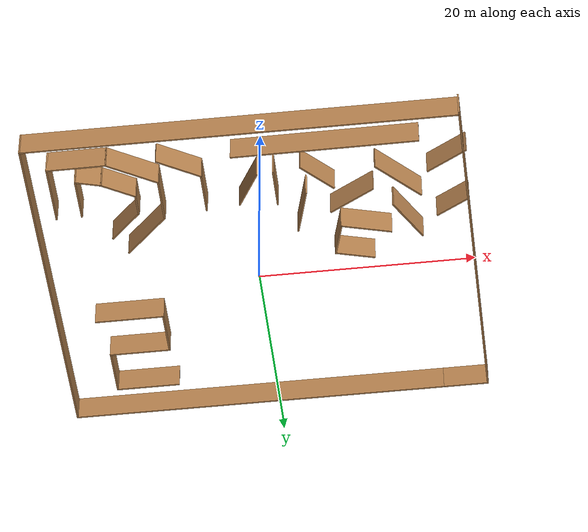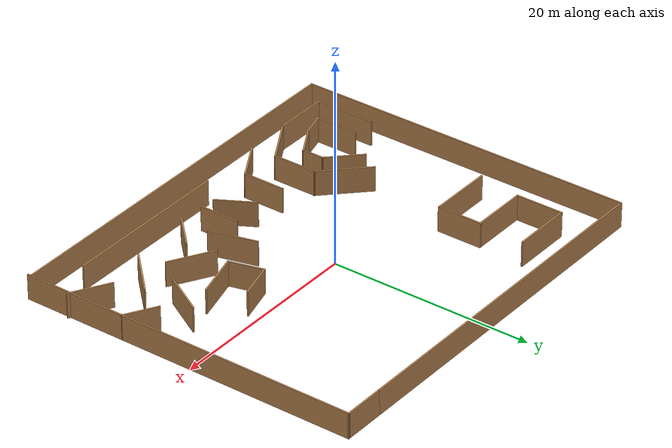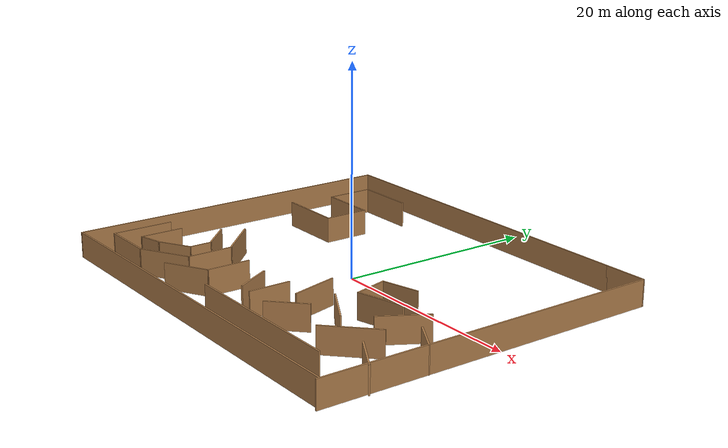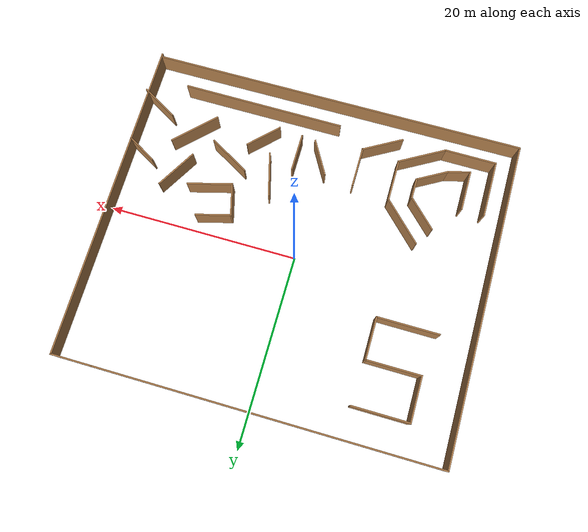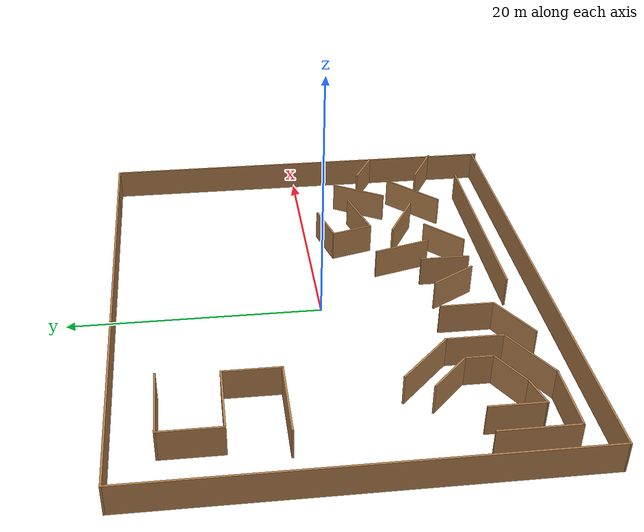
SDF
<?xml version='1.0'?>
<sdf version='1.7'>
  <model name='Building'>
    <pose>0.293684 -0.59256 0 0 -0 0</pose>
    <link name='Wall_0'>
      <collision name='Wall_0_Collision'>
        <geometry>
          <box>
            <size>33.75 0.15 2.5</size>
          </box>
        </geometry>
        <pose>0 0 1.25 0 -0 0</pose>
      </collision>
      <visual name='Wall_0_Visual'>
        <pose>0 0 1.25 0 -0 0</pose>
        <geometry>
          <box>
            <size>33.75 0.15 2.5</size>
          </box>
        </geometry>
        <material>
          <script>
            <uri>file://media/materials/scripts/gazebo.material</uri>
            <name>Gazebo/Wood</name>
          </script>
          <ambient>1 1 1 1</ambient>
        </material>
        <meta>
          <layer>0</layer>
        </meta>
      </visual>
      <pose>-19.8496 0.046789 0 0 -0 -1.5708</pose>
    </link>
    <link name='Wall_1'>
      <collision name='Wall_1_Collision'>
        <geometry>
          <box>
            <size>39.4949 0.15 2.5</size>
          </box>
        </geometry>
        <pose>0 0 1.25 0 -0 0</pose>
      </collision>
      <visual name='Wall_1_Visual'>
        <pose>0 0 1.25 0 -0 0</pose>
        <geometry>
          <box>
            <size>39.4949 0.15 2.5</size>
          </box>
        </geometry>
        <material>
          <script>
            <uri>file://media/materials/scripts/gazebo.material</uri>
            <name>Gazebo/Wood</name>
          </script>
          <ambient>1 1 1 1</ambient>
        </material>
        <meta>
          <layer>0</layer>
        </meta>
      </visual>
      <pose>-0.17734 -16.6596 0 0 -0 0.004757</pose>
    </link>
    <link name='Wall_10'>
      <collision name='Wall_10_Collision'>
        <geometry>
          <box>
            <size>5.25 0.15 2.5</size>
          </box>
        </geometry>
        <pose>0 0 1.25 0 -0 0</pose>
      </collision>
      <visual name='Wall_10_Visual'>
        <pose>0 0 1.25 0 -0 0</pose>
        <geometry>
          <box>
            <size>5.25 0.15 2.5</size>
          </box>
        </geometry>
        <material>
          <script>
            <uri>file://media/materials/scripts/gazebo.material</uri>
            <name>Gazebo/Wood</name>
          </script>
          <ambient>1 0.764706 0.305882 1</ambient>
        </material>
        <meta>
          <layer>0</layer>
        </meta>
      </visual>
      <pose>-10.2302 -13.1092 0 0 -0 0.523599</pose>
    </link>
    <link name='Wall_11'>
      <collision name='Wall_11_Collision'>
        <geometry>
          <box>
            <size>4.5 0.15 2.5</size>
          </box>
        </geometry>
        <pose>0 0 1.25 0 -0 0</pose>
      </collision>
      <visual name='Wall_11_Visual'>
        <pose>0 0 1.25 0 -0 0</pose>
        <geometry>
          <box>
            <size>4.5 0.15 2.5</size>
          </box>
        </geometry>
        <material>
          <script>
            <uri>file://media/materials/scripts/gazebo.material</uri>
            <name>Gazebo/Wood</name>
          </script>
          <ambient>1 0.764706 0.305882 1</ambient>
        </material>
        <meta>
          <layer>0</layer>
        </meta>
      </visual>
      <pose>-8.02188 -9.65922 0 0 -0 1.5708</pose>
    </link>
    <link name='Wall_12'>
      <collision name='Wall_12_Collision'>
        <geometry>
          <box>
            <size>5.5 0.15 2.5</size>
          </box>
        </geometry>
        <pose>0 0 1.25 0 -0 0</pose>
      </collision>
      <visual name='Wall_12_Visual'>
        <pose>0 0 1.25 0 -0 0</pose>
        <geometry>
          <box>
            <size>5.5 0.15 2.5</size>
          </box>
        </geometry>
        <material>
          <script>
            <uri>file://media/materials/scripts/gazebo.material</uri>
            <name>Gazebo/Wood</name>
          </script>
          <ambient>1 0.764706 0.305882 1</ambient>
        </material>
        <meta>
          <layer>0</layer>
        </meta>
      </visual>
      <pose>-9.91339 -5.59271 0 0 -0 2.35619</pose>
    </link>
    <link name='Wall_14'>
      <collision name='Wall_14_Collision'>
        <geometry>
          <box>
            <size>4.25 0.15 2.5</size>
          </box>
        </geometry>
        <pose>0 0 1.25 0 -0 0</pose>
      </collision>
      <visual name='Wall_14_Visual'>
        <pose>0 0 1.25 0 -0 0</pose>
        <geometry>
          <box>
            <size>4.25 0.15 2.5</size>
          </box>
        </geometry>
        <material>
          <script>
            <uri>file://media/materials/scripts/gazebo.material</uri>
            <name>Gazebo/Wood</name>
          </script>
          <ambient>1 0.764706 0.305882 1</ambient>
        </material>
        <meta>
          <layer>0</layer>
        </meta>
      </visual>
      <pose>-15.4536 -10.655 0 0 -0 -1.5708</pose>
    </link>
    <link name='Wall_15'>
      <collision name='Wall_15_Collision'>
        <geometry>
          <box>
            <size>2.5 0.15 2.5</size>
          </box>
        </geometry>
        <pose>0 0 1.25 0 -0 0</pose>
      </collision>
      <visual name='Wall_15_Visual'>
        <pose>0 0 1.25 0 -0 0</pose>
        <geometry>
          <box>
            <size>2.5 0.15 2.5</size>
          </box>
        </geometry>
        <material>
          <script>
            <uri>file://media/materials/scripts/gazebo.material</uri>
            <name>Gazebo/Wood</name>
          </script>
          <ambient>1 0.764706 0.305882 1</ambient>
        </material>
        <meta>
          <layer>0</layer>
        </meta>
      </visual>
      <pose>-14.3187 -12.4009 0 0 -0 0.261799</pose>
    </link>
    <link name='Wall_16'>
      <collision name='Wall_16_Collision'>
        <geometry>
          <box>
            <size>3.5 0.15 2.5</size>
          </box>
        </geometry>
        <pose>0 0 1.25 0 -0 0</pose>
      </collision>
      <visual name='Wall_16_Visual'>
        <pose>0 0 1.25 0 -0 0</pose>
        <geometry>
          <box>
            <size>3.5 0.15 2.5</size>
          </box>
        </geometry>
        <material>
          <script>
            <uri>file://media/materials/scripts/gazebo.material</uri>
            <name>Gazebo/Wood</name>
          </script>
          <ambient>1 0.764706 0.305882 1</ambient>
        </material>
        <meta>
          <layer>0</layer>
        </meta>
      </visual>
      <pose>-11.7331 -11.2593 0 0 -0 0.523599</pose>
    </link>
    <link name='Wall_17'>
      <collision name='Wall_17_Collision'>
        <geometry>
          <box>
            <size>2.25 0.15 2.5</size>
          </box>
        </geometry>
        <pose>0 0 1.25 0 -0 0</pose>
      </collision>
      <visual name='Wall_17_Visual'>
        <pose>0 0 1.25 0 -0 0</pose>
        <geometry>
          <box>
            <size>2.25 0.15 2.5</size>
          </box>
        </geometry>
        <material>
          <script>
            <uri>file://media/materials/scripts/gazebo.material</uri>
            <name>Gazebo/Wood</name>
          </script>
          <ambient>1 0.764706 0.305882 1</ambient>
        </material>
        <meta>
          <layer>0</layer>
        </meta>
      </visual>
      <pose>-10.2825 -9.37175 0 0 -0 1.5708</pose>
    </link>
    <link name='Wall_19'>
      <collision name='Wall_19_Collision'>
        <geometry>
          <box>
            <size>4 0.15 2.5</size>
          </box>
        </geometry>
        <pose>0 0 1.25 0 -0 0</pose>
      </collision>
      <visual name='Wall_19_Visual'>
        <pose>0 0 1.25 0 -0 0</pose>
        <geometry>
          <box>
            <size>4 0.15 2.5</size>
          </box>
        </geometry>
        <material>
          <script>
            <uri>file://media/materials/scripts/gazebo.material</uri>
            <name>Gazebo/Wood</name>
          </script>
          <ambient>1 0.764706 0.305882 1</ambient>
        </material>
        <meta>
          <layer>0</layer>
        </meta>
      </visual>
      <pose>-11.6437 -6.96057 0 0 -0 2.35619</pose>
    </link>
    <link name='Wall_2'>
      <collision name='Wall_2_Collision'>
        <geometry>
          <box>
            <size>33.8436 0.15 2.5</size>
          </box>
        </geometry>
        <pose>0 0 1.25 0 -0 0</pose>
      </collision>
      <visual name='Wall_2_Visual'>
        <pose>0 0 1.25 0 -0 0</pose>
        <geometry>
          <box>
            <size>33.8436 0.15 2.5</size>
          </box>
        </geometry>
        <material>
          <script>
            <uri>file://media/materials/scripts/gazebo.material</uri>
            <name>Gazebo/Wood</name>
          </script>
          <ambient>1 1 1 1</ambient>
        </material>
        <meta>
          <layer>0</layer>
        </meta>
      </visual>
      <pose>19.5944 1e-06 0 0 -0 1.57044</pose>
    </link>
    <link name='Wall_21'>
      <collision name='Wall_21_Collision'>
        <geometry>
          <box>
            <size>4.5 0.15 2.5</size>
          </box>
        </geometry>
        <pose>0 0 1.25 0 -0 0</pose>
      </collision>
      <visual name='Wall_21_Visual'>
        <pose>0 0 1.25 0 -0 0</pose>
        <geometry>
          <box>
            <size>4.5 0.15 2.5</size>
          </box>
        </geometry>
        <material>
          <script>
            <uri>file://media/materials/scripts/gazebo.material</uri>
            <name>Gazebo/Wood</name>
          </script>
          <ambient>1 0.764706 0.305882 1</ambient>
        </material>
        <meta>
          <layer>0</layer>
        </meta>
      </visual>
      <pose>-5.95994 -13.2061 0 0 -0 0.523599</pose>
    </link>
    <link name='Wall_22'>
      <collision name='Wall_22_Collision'>
        <geometry>
          <box>
            <size>4.25 0.15 2.5</size>
          </box>
        </geometry>
        <pose>0 0 1.25 0 -0 0</pose>
      </collision>
      <visual name='Wall_22_Visual'>
        <pose>0 0 1.25 0 -0 0</pose>
        <geometry>
          <box>
            <size>4.25 0.15 2.5</size>
          </box>
        </geometry>
        <material>
          <script>
            <uri>file://media/materials/scripts/gazebo.material</uri>
            <name>Gazebo/Wood</name>
          </script>
          <ambient>1 0.764706 0.305882 1</ambient>
        </material>
        <meta>
          <layer>0</layer>
        </meta>
      </visual>
      <pose>-4.07634 -10.0686 0 0 -0 1.5708</pose>
    </link>
    <link name='Wall_24'>
      <collision name='Wall_24_Collision'>
        <geometry>
          <box>
            <size>6 0.15 2.5</size>
          </box>
        </geometry>
        <pose>0 0 1.25 0 -0 0</pose>
      </collision>
      <visual name='Wall_24_Visual'>
        <pose>0 0 1.25 0 -0 0</pose>
        <geometry>
          <box>
            <size>6 0.15 2.5</size>
          </box>
        </geometry>
        <material>
          <script>
            <uri>file://media/materials/scripts/gazebo.material</uri>
            <name>Gazebo/Wood</name>
          </script>
          <ambient>0.996078 0.47451 0.0196078 1</ambient>
        </material>
        <meta>
          <layer>0</layer>
        </meta>
      </visual>
      <pose>-12.5375 13.5847 0 0 -0 3.14159</pose>
    </link>
    <link name='Wall_25'>
      <collision name='Wall_25_Collision'>
        <geometry>
          <box>
            <size>4.75 0.15 2.5</size>
          </box>
        </geometry>
        <pose>0 0 1.25 0 -0 0</pose>
      </collision>
      <visual name='Wall_25_Visual'>
        <pose>0 0 1.25 0 -0 0</pose>
        <geometry>
          <box>
            <size>4.75 0.15 2.5</size>
          </box>
        </geometry>
        <material>
          <script>
            <uri>file://media/materials/scripts/gazebo.material</uri>
            <name>Gazebo/Wood</name>
          </script>
          <ambient>0.996078 0.47451 0.0196078 1</ambient>
        </material>
        <meta>
          <layer>0</layer>
        </meta>
      </visual>
      <pose>-15.4625 11.2847 0 0 -0 -1.5708</pose>
    </link>
    <link name='Wall_26'>
      <collision name='Wall_26_Collision'>
        <geometry>
          <box>
            <size>5.75 0.15 2.5</size>
          </box>
        </geometry>
        <pose>0 0 1.25 0 -0 0</pose>
      </collision>
      <visual name='Wall_26_Visual'>
        <pose>0 0 1.25 0 -0 0</pose>
        <geometry>
          <box>
            <size>5.75 0.15 2.5</size>
          </box>
        </geometry>
        <material>
          <script>
            <uri>file://media/materials/scripts/gazebo.material</uri>
            <name>Gazebo/Wood</name>
          </script>
          <ambient>0.996078 0.47451 0.0196078 1</ambient>
        </material>
        <meta>
          <layer>0</layer>
        </meta>
      </visual>
      <pose>-12.6625 8.98469 0 0 -0 0</pose>
    </link>
    <link name='Wall_27'>
      <collision name='Wall_27_Collision'>
        <geometry>
          <box>
            <size>4.5 0.15 2.5</size>
          </box>
        </geometry>
        <pose>0 0 1.25 0 -0 0</pose>
      </collision>
      <visual name='Wall_27_Visual'>
        <pose>0 0 1.25 0 -0 0</pose>
        <geometry>
          <box>
            <size>4.5 0.15 2.5</size>
          </box>
        </geometry>
        <material>
          <script>
            <uri>file://media/materials/scripts/gazebo.material</uri>
            <name>Gazebo/Wood</name>
          </script>
          <ambient>0.996078 0.47451 0.0196078 1</ambient>
        </material>
        <meta>
          <layer>0</layer>
        </meta>
      </visual>
      <pose>-9.86247 6.80969 0 0 -0 -1.5708</pose>
    </link>
    <link name='Wall_28'>
      <collision name='Wall_28_Collision'>
        <geometry>
          <box>
            <size>6.5 0.15 2.5</size>
          </box>
        </geometry>
        <pose>0 0 1.25 0 -0 0</pose>
      </collision>
      <visual name='Wall_28_Visual'>
        <pose>0 0 1.25 0 -0 0</pose>
        <geometry>
          <box>
            <size>6.5 0.15 2.5</size>
          </box>
        </geometry>
        <material>
          <script>
            <uri>file://media/materials/scripts/gazebo.material</uri>
            <name>Gazebo/Wood</name>
          </script>
          <ambient>0.996078 0.47451 0.0196078 1</ambient>
        </material>
        <meta>
          <layer>0</layer>
        </meta>
      </visual>
      <pose>-13.0375 4.63469 0 0 -0 3.14159</pose>
    </link>
    <link name='Wall_31'>
      <collision name='Wall_31_Collision'>
        <geometry>
          <box>
            <size>17 0.15 2.5</size>
          </box>
        </geometry>
        <pose>0 0 1.25 0 -0 0</pose>
      </collision>
      <visual name='Wall_31_Visual'>
        <pose>0 0 1.25 0 -0 0</pose>
        <geometry>
          <box>
            <size>17 0.15 2.5</size>
          </box>
        </geometry>
        <material>
          <script>
            <uri>file://media/materials/scripts/gazebo.material</uri>
            <name>Gazebo/Wood</name>
          </script>
          <ambient>0.435294 0.796078 0.67451 1</ambient>
        </material>
        <meta>
          <layer>0</layer>
        </meta>
      </visual>
      <pose>7.30337 -14.0106 0 0 -0 0</pose>
    </link>
    <link name='Wall_33'>
      <collision name='Wall_33_Collision'>
        <geometry>
          <box>
            <size>5.5 0.15 2.5</size>
          </box>
        </geometry>
        <pose>0 0 1.25 0 -0 0</pose>
      </collision>
      <visual name='Wall_33_Visual'>
        <pose>0 0 1.25 0 -0 0</pose>
        <geometry>
          <box>
            <size>5.5 0.15 2.5</size>
          </box>
        </geometry>
        <material>
          <script>
            <uri>file://media/materials/scripts/gazebo.material</uri>
            <name>Gazebo/Wood</name>
          </script>
          <ambient>0.435294 0.796078 0.67451 1</ambient>
        </material>
        <meta>
          <layer>0</layer>
        </meta>
      </visual>
      <pose>13.5062 -9.50104 0 0 -0 0.785398</pose>
    </link>
    <link name='Wall_35'>
      <collision name='Wall_35_Collision'>
        <geometry>
          <box>
            <size>4.75 0.15 2.5</size>
          </box>
        </geometry>
        <pose>0 0 1.25 0 -0 0</pose>
      </collision>
      <visual name='Wall_35_Visual'>
        <pose>0 0 1.25 0 -0 0</pose>
        <geometry>
          <box>
            <size>4.75 0.15 2.5</size>
          </box>
        </geometry>
        <material>
          <script>
            <uri>file://media/materials/scripts/gazebo.material</uri>
            <name>Gazebo/Wood</name>
          </script>
          <ambient>0.435294 0.796078 0.67451 1</ambient>
        </material>
        <meta>
          <layer>0</layer>
        </meta>
      </visual>
      <pose>9.12749 -7.62454 0 0 -0 2.61799</pose>
    </link>
    <link name='Wall_37'>
      <collision name='Wall_37_Collision'>
        <geometry>
          <box>
            <size>4 0.15 2.5</size>
          </box>
        </geometry>
        <pose>0 0 1.25 0 -0 0</pose>
      </collision>
      <visual name='Wall_37_Visual'>
        <pose>0 0 1.25 0 -0 0</pose>
        <geometry>
          <box>
            <size>4 0.15 2.5</size>
          </box>
        </geometry>
        <material>
          <script>
            <uri>file://media/materials/scripts/gazebo.material</uri>
            <name>Gazebo/Wood</name>
          </script>
          <ambient>0.435294 0.796078 0.67451 1</ambient>
        </material>
        <meta>
          <layer>0</layer>
        </meta>
      </visual>
      <pose>6.29107 -10.7018 0 0 -0 -2.35619</pose>
    </link>
    <link name='Wall_40'>
      <collision name='Wall_40_Collision'>
        <geometry>
          <box>
            <size>4 0.15 2.5</size>
          </box>
        </geometry>
        <pose>0 0 1.25 0 -0 0</pose>
      </collision>
      <visual name='Wall_40_Visual'>
        <pose>0 0 1.25 0 -0 0</pose>
        <geometry>
          <box>
            <size>4 0.15 2.5</size>
          </box>
        </geometry>
        <material>
          <script>
            <uri>file://media/materials/scripts/gazebo.material</uri>
            <name>Gazebo/Wood</name>
          </script>
          <ambient>0.435294 0.796078 0.67451 1</ambient>
        </material>
        <meta>
          <layer>0</layer>
        </meta>
      </visual>
      <pose>2.41623 -9.89209 0 0 -0 1.5708</pose>
    </link>
    <link name='Wall_42'>
      <collision name='Wall_42_Collision'>
        <geometry>
          <box>
            <size>4.75 0.15 2.5</size>
          </box>
        </geometry>
        <pose>0 0 1.25 0 -0 0</pose>
      </collision>
      <visual name='Wall_42_Visual'>
        <pose>0 0 1.25 0 -0 0</pose>
        <geometry>
          <box>
            <size>4.75 0.15 2.5</size>
          </box>
        </geometry>
        <material>
          <script>
            <uri>file://media/materials/scripts/gazebo.material</uri>
            <name>Gazebo/Wood</name>
          </script>
          <ambient>0.435294 0.796078 0.67451 1</ambient>
        </material>
        <meta>
          <layer>0</layer>
        </meta>
      </visual>
      <pose>4.50971 -6.76518 0 0 -0 1.8326</pose>
    </link>
    <link name='Wall_45'>
      <collision name='Wall_45_Collision'>
        <geometry>
          <box>
            <size>4 0.15 2.5</size>
          </box>
        </geometry>
        <pose>0 0 1.25 0 -0 0</pose>
      </collision>
      <visual name='Wall_45_Visual'>
        <pose>0 0 1.25 0 -0 0</pose>
        <geometry>
          <box>
            <size>4 0.15 2.5</size>
          </box>
        </geometry>
        <material>
          <script>
            <uri>file://media/materials/scripts/gazebo.material</uri>
            <name>Gazebo/Wood</name>
          </script>
          <ambient>0.435294 0.796078 0.67451 1</ambient>
        </material>
        <meta>
          <layer>0</layer>
        </meta>
      </visual>
      <pose>-0.032172 -10.0085 0 0 -0 2.0944</pose>
    </link>
    <link name='Wall_47'>
      <collision name='Wall_47_Collision'>
        <geometry>
          <box>
            <size>4.75 0.15 2.5</size>
          </box>
        </geometry>
        <pose>0 0 1.25 0 -0 0</pose>
      </collision>
      <visual name='Wall_47_Visual'>
        <pose>0 0 1.25 0 -0 0</pose>
        <geometry>
          <box>
            <size>4.75 0.15 2.5</size>
          </box>
        </geometry>
        <material>
          <script>
            <uri>file://media/materials/scripts/gazebo.material</uri>
            <name>Gazebo/Wood</name>
          </script>
          <ambient>0.435294 0.796078 0.67451 1</ambient>
        </material>
        <meta>
          <layer>0</layer>
        </meta>
      </visual>
      <pose>13.9675 -4.65997 0 0 -0 1.0472</pose>
    </link>
    <link name='Wall_49'>
      <collision name='Wall_49_Collision'>
        <geometry>
          <box>
            <size>4.75 0.15 2.5</size>
          </box>
        </geometry>
        <pose>0 0 1.25 0 -0 0</pose>
      </collision>
      <visual name='Wall_49_Visual'>
        <pose>0 0 1.25 0 -0 0</pose>
        <geometry>
          <box>
            <size>4.75 0.15 2.5</size>
          </box>
        </geometry>
        <material>
          <script>
            <uri>file://media/materials/scripts/gazebo.material</uri>
            <name>Gazebo/Wood</name>
          </script>
          <ambient>0.435294 0.796078 0.67451 1</ambient>
        </material>
        <meta>
          <layer>0</layer>
        </meta>
      </visual>
      <pose>10.1006 -4.06304 0 0 -0 -2.87979</pose>
    </link>
    <link name='Wall_5'>
      <collision name='Wall_5_Collision'>
        <geometry>
          <box>
            <size>35.5 0.15 2.5</size>
          </box>
        </geometry>
        <pose>0 0 1.25 0 -0 0</pose>
      </collision>
      <visual name='Wall_5_Visual'>
        <pose>0 0 1.25 0 -0 0</pose>
        <geometry>
          <box>
            <size>35.5 0.15 2.5</size>
          </box>
        </geometry>
        <material>
          <script>
            <uri>file://media/materials/scripts/gazebo.material</uri>
            <name>Gazebo/Wood</name>
          </script>
          <ambient>1 1 1 1</ambient>
        </material>
        <meta>
          <layer>0</layer>
        </meta>
      </visual>
      <pose>-2.17456 16.8468 0 0 -0 0</pose>
    </link>
    <link name='Wall_50'>
      <collision name='Wall_50_Collision'>
        <geometry>
          <box>
            <size>3.5 0.15 2.5</size>
          </box>
        </geometry>
        <pose>0 0 1.25 0 -0 0</pose>
      </collision>
      <visual name='Wall_50_Visual'>
        <pose>0 0 1.25 0 -0 0</pose>
        <geometry>
          <box>
            <size>3.5 0.15 2.5</size>
          </box>
        </geometry>
        <material>
          <script>
            <uri>file://media/materials/scripts/gazebo.material</uri>
            <name>Gazebo/Wood</name>
          </script>
          <ambient>0.435294 0.796078 0.67451 1</ambient>
        </material>
        <meta>
          <layer>0</layer>
        </meta>
      </visual>
      <pose>7.44543 -3.0404 0 0 -0 1.8326</pose>
    </link>
    <link name='Wall_51'>
      <collision name='Wall_51_Collision'>
        <geometry>
          <box>
            <size>3.75 0.15 2.5</size>
          </box>
        </geometry>
        <pose>0 0 1.25 0 -0 0</pose>
      </collision>
      <visual name='Wall_51_Visual'>
        <pose>0 0 1.25 0 -0 0</pose>
        <geometry>
          <box>
            <size>3.75 0.15 2.5</size>
          </box>
        </geometry>
        <material>
          <script>
            <uri>file://media/materials/scripts/gazebo.material</uri>
            <name>Gazebo/Wood</name>
          </script>
          <ambient>0.435294 0.796078 0.67451 1</ambient>
        </material>
        <meta>
          <layer>0</layer>
        </meta>
      </visual>
      <pose>8.75058 -0.956602 0 0 -0 0.261799</pose>
    </link>
    <link name='Wall_53'>
      <collision name='Wall_53_Collision'>
        <geometry>
          <box>
            <size>3.5 0.15 2.5</size>
          </box>
        </geometry>
        <pose>0 0 1.25 0 -0 0</pose>
      </collision>
      <visual name='Wall_53_Visual'>
        <pose>0 0 1.25 0 -0 0</pose>
        <geometry>
          <box>
            <size>3.5 0.15 2.5</size>
          </box>
        </geometry>
        <material>
          <script>
            <uri>file://media/materials/scripts/gazebo.material</uri>
            <name>Gazebo/Wood</name>
          </script>
          <ambient>0.435294 0.796078 0.67451 1</ambient>
        </material>
        <meta>
          <layer>0</layer>
        </meta>
      </visual>
      <pose>18.1596 -5.81583 0 0 -0 2.61799</pose>
    </link>
    <link name='Wall_55'>
      <collision name='Wall_55_Collision'>
        <geometry>
          <box>
            <size>4.25 0.15 2.5</size>
          </box>
        </geometry>
        <pose>0 0 1.25 0 -0 0</pose>
      </collision>
      <visual name='Wall_55_Visual'>
        <pose>0 0 1.25 0 -0 0</pose>
        <geometry>
          <box>
            <size>4.25 0.15 2.5</size>
          </box>
        </geometry>
        <material>
          <script>
            <uri>file://media/materials/scripts/gazebo.material</uri>
            <name>Gazebo/Wood</name>
          </script>
          <ambient>0.435294 0.796078 0.67451 1</ambient>
        </material>
        <meta>
          <layer>0</layer>
        </meta>
      </visual>
      <pose>18.0471 -11.3597 0 0 -0 2.61799</pose>
    </link>
    <link name='Wall_6'>
      <collision name='Wall_6_Collision'>
        <geometry>
          <box>
            <size>4.25 0.15 2.5</size>
          </box>
        </geometry>
        <pose>0 0 1.25 0 -0 0</pose>
      </collision>
      <visual name='Wall_6_Visual'>
        <pose>0 0 1.25 0 -0 0</pose>
        <geometry>
          <box>
            <size>4.25 0.15 2.5</size>
          </box>
        </geometry>
        <material>
          <script>
            <uri>file://media/materials/scripts/gazebo.material</uri>
            <name>Gazebo/Wood</name>
          </script>
          <ambient>1 1 1 1</ambient>
        </material>
        <meta>
          <layer>0</layer>
        </meta>
      </visual>
      <pose>17.5504 16.8468 0 0 -0 0</pose>
    </link>
    <link name='Wall_8'>
      <collision name='Wall_8_Collision'>
        <geometry>
          <box>
            <size>6 0.15 2.5</size>
          </box>
        </geometry>
        <pose>0 0 1.25 0 -0 0</pose>
      </collision>
      <visual name='Wall_8_Visual'>
        <pose>0 0 1.25 0 -0 0</pose>
        <geometry>
          <box>
            <size>6 0.15 2.5</size>
          </box>
        </geometry>
        <material>
          <script>
            <uri>file://media/materials/scripts/gazebo.material</uri>
            <name>Gazebo/Wood</name>
          </script>
          <ambient>1 0.764706 0.305882 1</ambient>
        </material>
        <meta>
          <layer>0</layer>
        </meta>
      </visual>
      <pose>-17.7886 -11.4592 0 0 -0 -1.5708</pose>
    </link>
    <link name='Wall_9'>
      <collision name='Wall_9_Collision'>
        <geometry>
          <box>
            <size>5.5 0.15 2.5</size>
          </box>
        </geometry>
        <pose>0 0 1.25 0 -0 0</pose>
      </collision>
      <visual name='Wall_9_Visual'>
        <pose>0 0 1.25 0 -0 0</pose>
        <geometry>
          <box>
            <size>5.5 0.15 2.5</size>
          </box>
        </geometry>
        <material>
          <script>
            <uri>file://media/materials/scripts/gazebo.material</uri>
            <name>Gazebo/Wood</name>
          </script>
          <ambient>1 0.764706 0.305882 1</ambient>
        </material>
        <meta>
          <layer>0</layer>
        </meta>
      </visual>
      <pose>-15.1136 -14.3842 0 0 -0 0</pose>
    </link>
    <static>1</static>
  </model>
</sdf>
